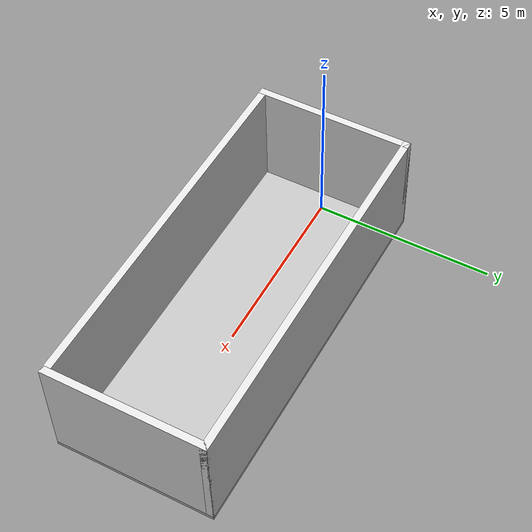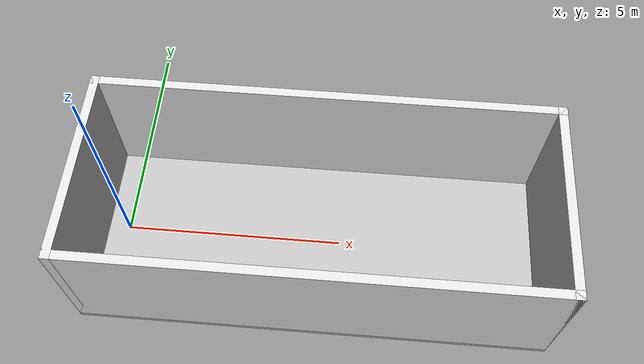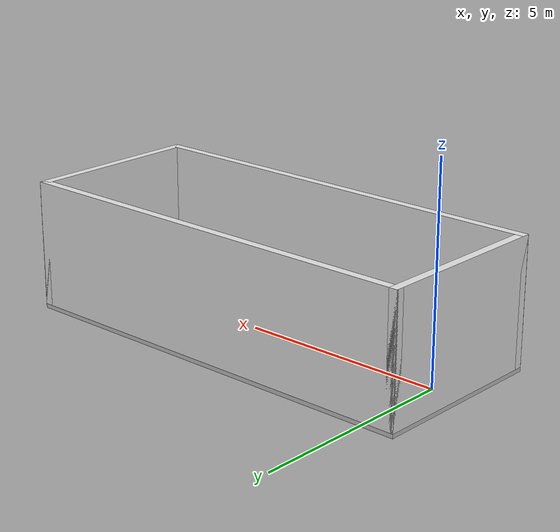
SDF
<sdf version="1.6">
 <world name="indoor_corridor">
  <gravity>0 0 -9.8</gravity>
  <physics type="ode">
   <real_time_update_rate>500</real_time_update_rate>
   <max_step_size>0.002</max_step_size>
   <real_time_factor>1</real_time_factor>
  </physics>
  <scene><ambient>0.6 0.6 0.6 1</ambient><background>0.4 0.4 0.4 1</background><shadows>false</shadows></scene>
  <light name="sun" type="directional">
   <cast_shadows>false</cast_shadows>
   <pose>0 0 10 0 0 0</pose>
   <diffuse>0.9 0.9 0.9 1</diffuse>
   <specular>0.3 0.3 0.3 1</specular>
   <direction>-0.5 0.1 -0.9</direction>
  </light>
  <model name="floor">
   <static>true</static>
   <pose>4.5 0 -0.05 0 0 0</pose>
   <link name="link">
    <collision name="collision">
     <geometry><box><size>10.4 4.4 0.1</size></box></geometry>
     <surface><friction><ode><mu>1.0</mu><mu2>1.0</mu2></ode></friction></surface>
    </collision>
    <visual name="visual">
     <geometry><box><size>10.4 4.4 0.1</size></box></geometry>
     <material>
      <ambient>0.75 0.75 0.75 1</ambient>
      <diffuse>0.75 0.75 0.75 1</diffuse>
      <specular>0.1 0.1 0.1 1</specular>
     </material>
    </visual>
   </link>
  </model>
  <model name="wall_back">
   <static>true</static>
   <pose>-0.6 0 1.5 0 0 0</pose>
   <link name="link">
    <collision name="collision"><geometry><box><size>0.2 4.4 3.0</size></box></geometry></collision>
    <visual name="visual">
     <geometry><box><size>0.2 4.4 3.0</size></box></geometry>
     <material><ambient>0.88 0.88 0.88 1</ambient><diffuse>0.88 0.88 0.88 1</diffuse></material>
    </visual>
   </link>
  </model>
  <model name="wall_far">
   <static>true</static>
   <pose>9.6 0 1.5 0 0 0</pose>
   <link name="link">
    <collision name="collision"><geometry><box><size>0.2 4.4 3.0</size></box></geometry></collision>
    <visual name="visual">
     <geometry><box><size>0.2 4.4 3.0</size></box></geometry>
     <material><ambient>0.88 0.88 0.88 1</ambient><diffuse>0.88 0.88 0.88 1</diffuse></material>
    </visual>
   </link>
  </model>
  <model name="wall_left">
   <static>true</static>
   <pose>4.5 -2.1 1.5 0 0 0</pose>
   <link name="link">
    <collision name="collision"><geometry><box><size>10.4 0.2 3.0</size></box></geometry></collision>
    <visual name="visual">
     <geometry><box><size>10.4 0.2 3.0</size></box></geometry>
     <material><ambient>0.88 0.88 0.88 1</ambient><diffuse>0.88 0.88 0.88 1</diffuse></material>
    </visual>
   </link>
  </model>
  <model name="wall_right">
   <static>true</static>
   <pose>4.5 2.1 1.5 0 0 0</pose>
   <link name="link">
    <collision name="collision"><geometry><box><size>10.4 0.2 3.0</size></box></geometry></collision>
    <visual name="visual">
     <geometry><box><size>10.4 0.2 3.0</size></box></geometry>
     <material><ambient>0.88 0.88 0.88 1</ambient><diffuse>0.88 0.88 0.88 1</diffuse></material>
    </visual>
   </link>
  </model>
 </world>
</sdf>
